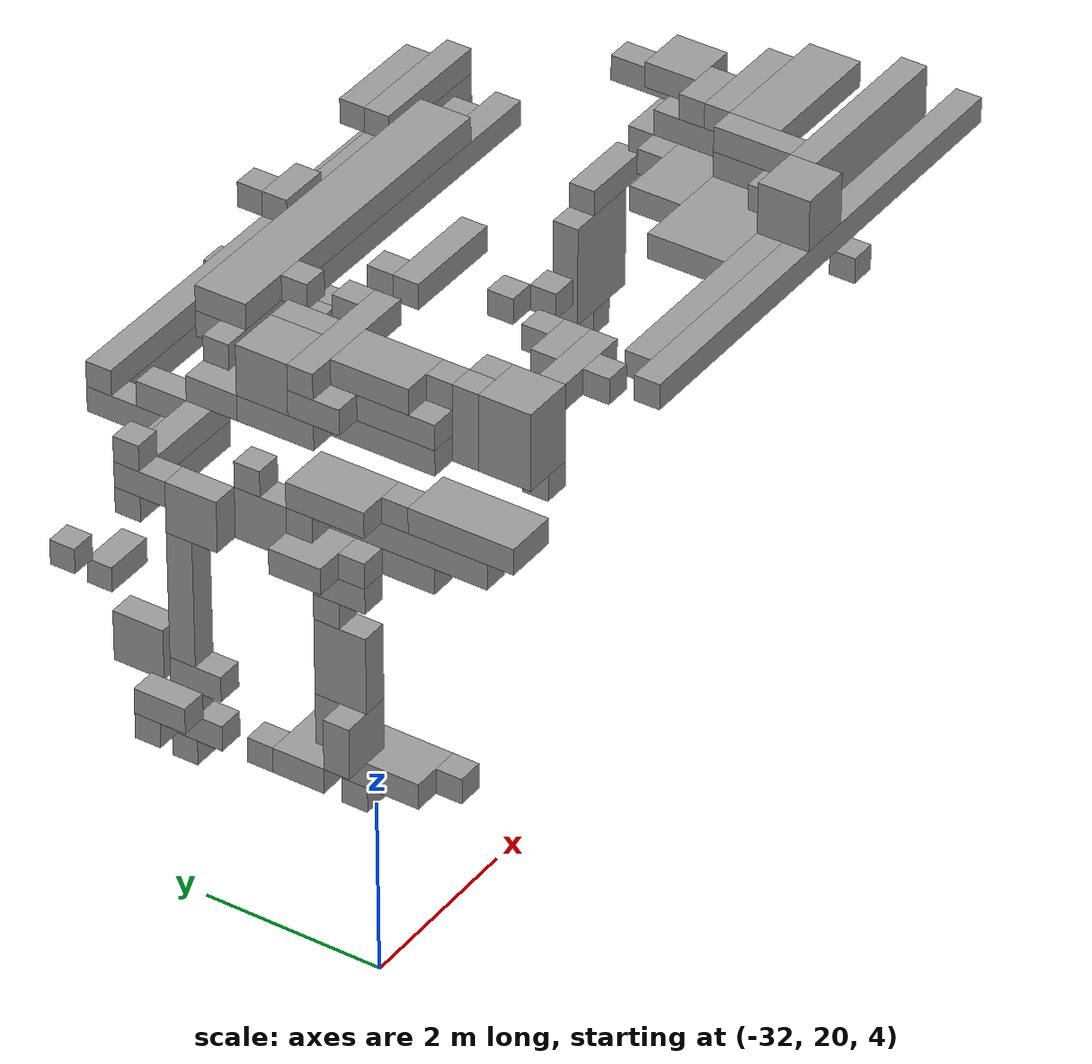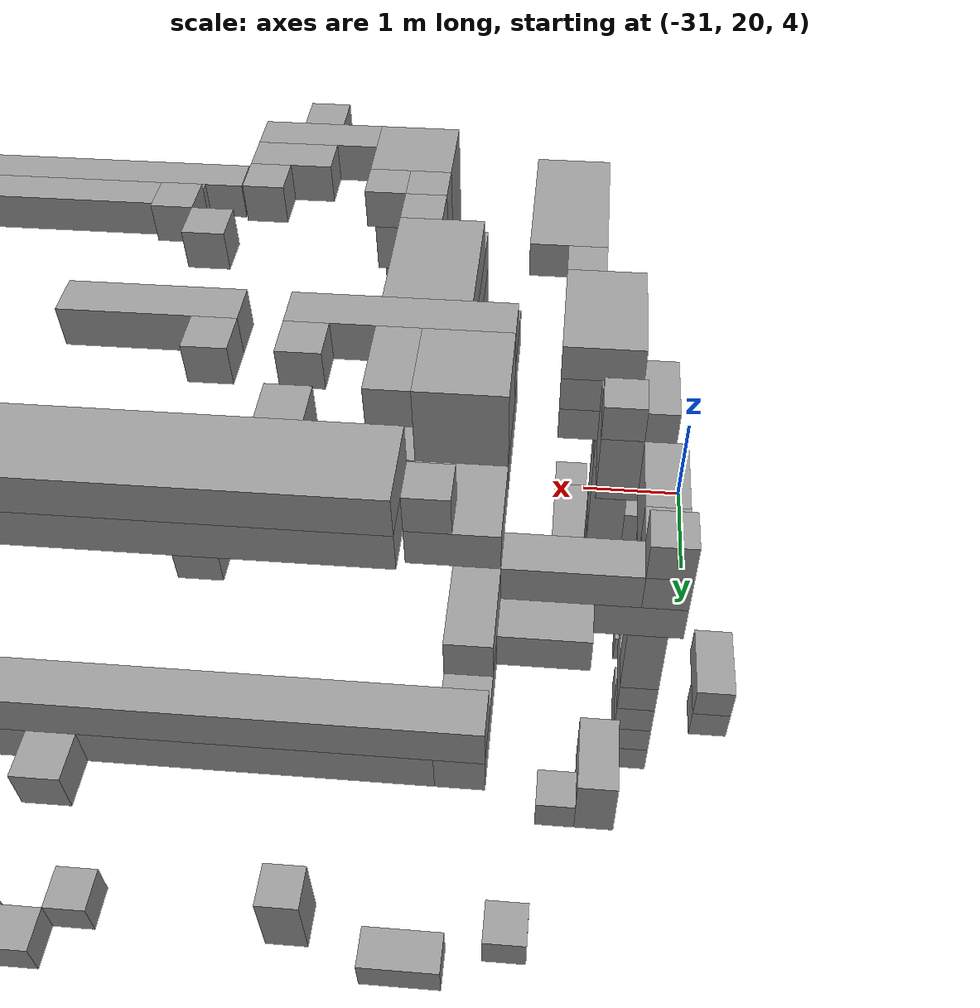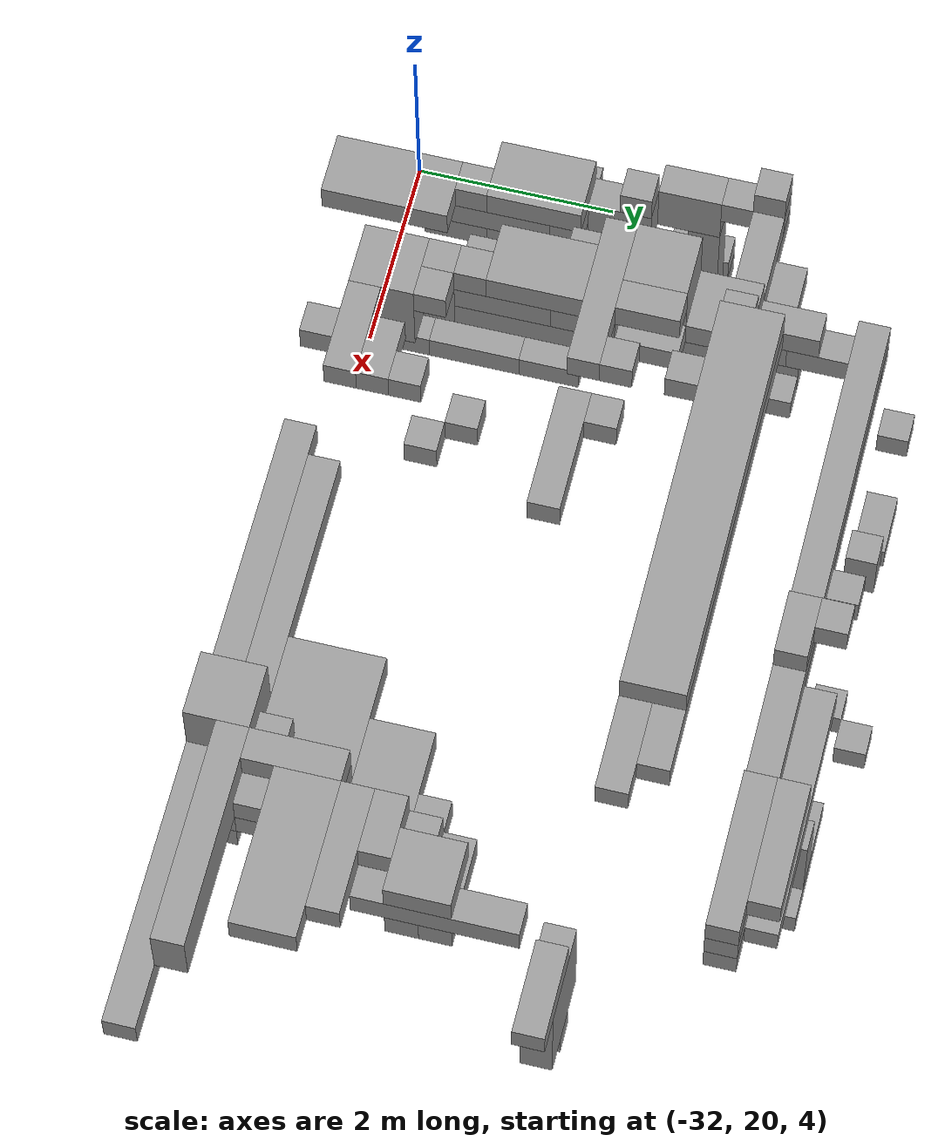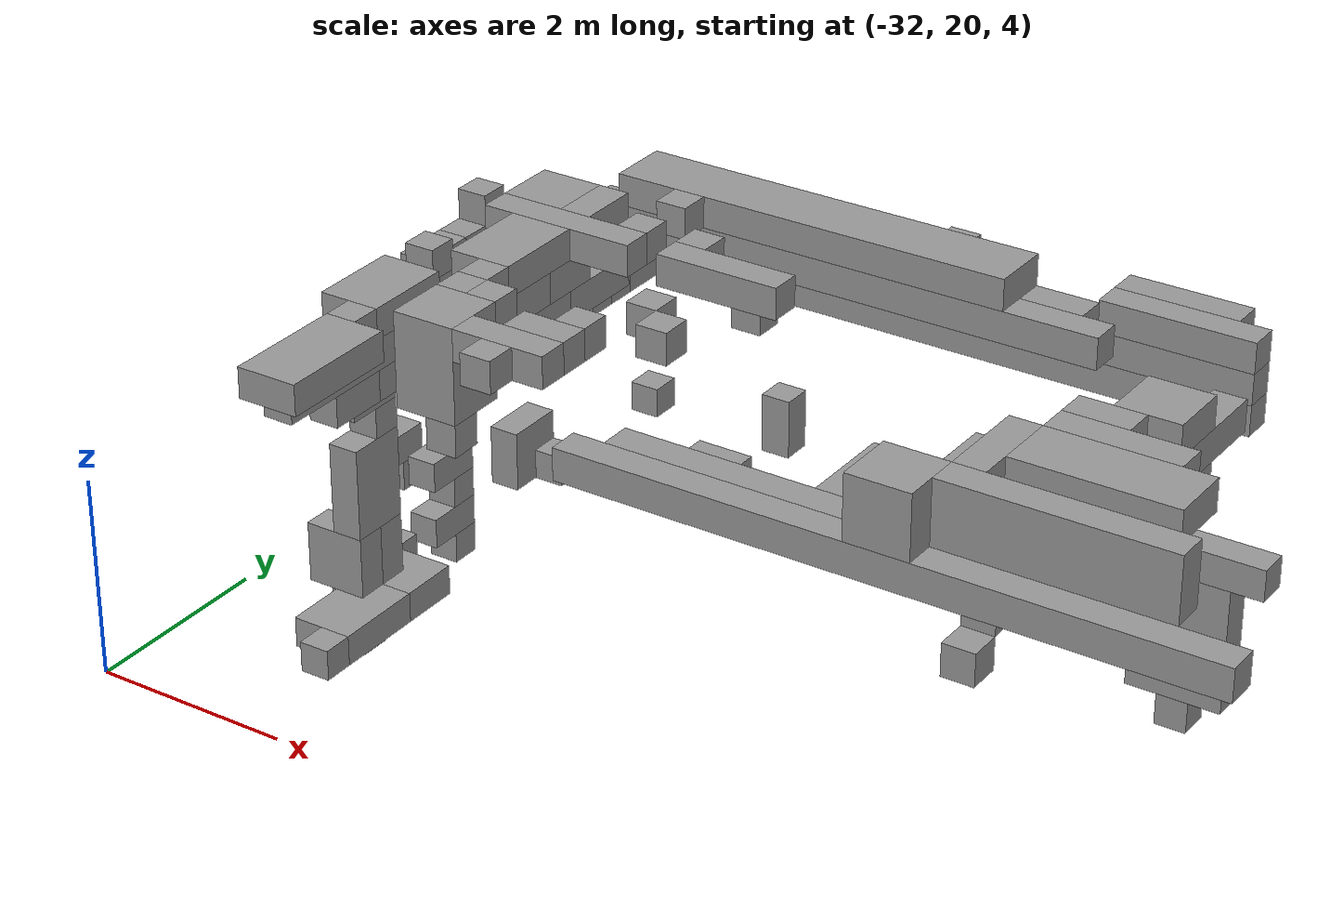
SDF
<sdf version="1.6">
 <world name="bt_world">
  <include><uri>model://sun</uri></include>
  <model name="obstacle_0">
   <static>true</static>
   <pose>-31.049999999999997 23.099999999999998 5.25 0 0 0</pose>
   <link name="link">
    <collision name="collision"><geometry><box><size>0.3 0.6 0.3</size></box></geometry></collision>
    <visual name="visual">
     <geometry><box><size>0.3 0.6 0.3</size></box></geometry>
     <material><ambient>0.5 0.5 0.5 1</ambient><diffuse>0.6 0.6 0.6 1</diffuse></material>
    </visual>
   </link>
  </model>
  <model name="obstacle_1">
   <static>true</static>
   <pose>-31.049999999999997 23.25 4.95 0 0 0</pose>
   <link name="link">
    <collision name="collision"><geometry><box><size>0.3 0.3 0.3</size></box></geometry></collision>
    <visual name="visual">
     <geometry><box><size>0.3 0.3 0.3</size></box></geometry>
     <material><ambient>0.5 0.5 0.5 1</ambient><diffuse>0.6 0.6 0.6 1</diffuse></material>
    </visual>
   </link>
  </model>
  <model name="obstacle_2">
   <static>true</static>
   <pose>-30.299999999999997 21.45 5.1 0 0 0</pose>
   <link name="link">
    <collision name="collision"><geometry><box><size>0.6 0.3 0.6</size></box></geometry></collision>
    <visual name="visual">
     <geometry><box><size>0.6 0.3 0.6</size></box></geometry>
     <material><ambient>0.5 0.5 0.5 1</ambient><diffuse>0.6 0.6 0.6 1</diffuse></material>
    </visual>
   </link>
  </model>
  <model name="obstacle_3">
   <static>true</static>
   <pose>-30.15 21.9 4.6499999999999995 0 0 0</pose>
   <link name="link">
    <collision name="collision">
     <geometry><box><size>0.8999999999999999 0.6 0.3</size></box></geometry>
    </collision>
    <visual name="visual">
     <geometry><box><size>0.8999999999999999 0.6 0.3</size></box></geometry>
     <material><ambient>0.5 0.5 0.5 1</ambient><diffuse>0.6 0.6 0.6 1</diffuse></material>
    </visual>
   </link>
  </model>
  <model name="obstacle_4">
   <static>true</static>
   <pose>-30.15 21.9 7.05 0 0 0</pose>
   <link name="link">
    <collision name="collision">
     <geometry><box><size>0.8999999999999999 0.6 0.3</size></box></geometry>
    </collision>
    <visual name="visual">
     <geometry><box><size>0.8999999999999999 0.6 0.3</size></box></geometry>
     <material><ambient>0.5 0.5 0.5 1</ambient><diffuse>0.6 0.6 0.6 1</diffuse></material>
    </visual>
   </link>
  </model>
  <model name="obstacle_5">
   <static>true</static>
   <pose>-30.45 22.349999999999998 4.6499999999999995 0 0 0</pose>
   <link name="link">
    <collision name="collision"><geometry><box><size>0.3 0.3 0.3</size></box></geometry></collision>
    <visual name="visual">
     <geometry><box><size>0.3 0.3 0.3</size></box></geometry>
     <material><ambient>0.5 0.5 0.5 1</ambient><diffuse>0.6 0.6 0.6 1</diffuse></material>
    </visual>
   </link>
  </model>
  <model name="obstacle_6">
   <static>true</static>
   <pose>-30.45 23.099999999999998 4.6499999999999995 0 0 0</pose>
   <link name="link">
    <collision name="collision"><geometry><box><size>0.3 0.6 0.3</size></box></geometry></collision>
    <visual name="visual">
     <geometry><box><size>0.3 0.6 0.3</size></box></geometry>
     <material><ambient>0.5 0.5 0.5 1</ambient><diffuse>0.6 0.6 0.6 1</diffuse></material>
    </visual>
   </link>
  </model>
  <model name="obstacle_7">
   <static>true</static>
   <pose>-30.45 23.099999999999998 5.25 0 0 0</pose>
   <link name="link">
    <collision name="collision"><geometry><box><size>0.3 0.6 0.3</size></box></geometry></collision>
    <visual name="visual">
     <geometry><box><size>0.3 0.6 0.3</size></box></geometry>
     <material><ambient>0.5 0.5 0.5 1</ambient><diffuse>0.6 0.6 0.6 1</diffuse></material>
    </visual>
   </link>
  </model>
  <model name="obstacle_8">
   <static>true</static>
   <pose>-30.45 23.099999999999998 7.199999999999999 0 0 0</pose>
   <link name="link">
    <collision name="collision"><geometry><box><size>0.3 0.6 0.6</size></box></geometry></collision>
    <visual name="visual">
     <geometry><box><size>0.3 0.6 0.6</size></box></geometry>
     <material><ambient>0.5 0.5 0.5 1</ambient><diffuse>0.6 0.6 0.6 1</diffuse></material>
    </visual>
   </link>
  </model>
  <model name="obstacle_9">
   <static>true</static>
   <pose>-30.45 23.25 4.35 0 0 0</pose>
   <link name="link">
    <collision name="collision"><geometry><box><size>0.3 0.3 0.3</size></box></geometry></collision>
    <visual name="visual">
     <geometry><box><size>0.3 0.3 0.3</size></box></geometry>
     <material><ambient>0.5 0.5 0.5 1</ambient><diffuse>0.6 0.6 0.6 1</diffuse></material>
    </visual>
   </link>
  </model>
  <model name="obstacle_10">
   <static>true</static>
   <pose>-30.45 23.25 4.95 0 0 0</pose>
   <link name="link">
    <collision name="collision"><geometry><box><size>0.3 0.3 0.3</size></box></geometry></collision>
    <visual name="visual">
     <geometry><box><size>0.3 0.3 0.3</size></box></geometry>
     <material><ambient>0.5 0.5 0.5 1</ambient><diffuse>0.6 0.6 0.6 1</diffuse></material>
    </visual>
   </link>
  </model>
  <model name="obstacle_11">
   <static>true</static>
   <pose>-30.45 23.25 6.1499999999999995 0 0 0</pose>
   <link name="link">
    <collision name="collision"><geometry><box><size>0.3 0.3 1.5</size></box></geometry></collision>
    <visual name="visual">
     <geometry><box><size>0.3 0.3 1.5</size></box></geometry>
     <material><ambient>0.5 0.5 0.5 1</ambient><diffuse>0.6 0.6 0.6 1</diffuse></material>
    </visual>
   </link>
  </model>
  <model name="obstacle_12">
   <static>true</static>
   <pose>-30.45 23.7 7.35 0 0 0</pose>
   <link name="link">
    <collision name="collision"><geometry><box><size>0.3 0.6 0.3</size></box></geometry></collision>
    <visual name="visual">
     <geometry><box><size>0.3 0.6 0.3</size></box></geometry>
     <material><ambient>0.5 0.5 0.5 1</ambient><diffuse>0.6 0.6 0.6 1</diffuse></material>
    </visual>
   </link>
  </model>
  <model name="obstacle_13">
   <static>true</static>
   <pose>-29.849999999999998 23.849999999999998 7.05 0 0 0</pose>
   <link name="link">
    <collision name="collision"><geometry><box><size>1.5 0.3 0.3</size></box></geometry></collision>
    <visual name="visual">
     <geometry><box><size>1.5 0.3 0.3</size></box></geometry>
     <material><ambient>0.5 0.5 0.5 1</ambient><diffuse>0.6 0.6 0.6 1</diffuse></material>
    </visual>
   </link>
  </model>
  <model name="obstacle_14">
   <static>true</static>
   <pose>-30.45 23.849999999999998 7.6499999999999995 0 0 0</pose>
   <link name="link">
    <collision name="collision"><geometry><box><size>0.3 0.3 0.3</size></box></geometry></collision>
    <visual name="visual">
     <geometry><box><size>0.3 0.3 0.3</size></box></geometry>
     <material><ambient>0.5 0.5 0.5 1</ambient><diffuse>0.6 0.6 0.6 1</diffuse></material>
    </visual>
   </link>
  </model>
  <model name="obstacle_15">
   <static>true</static>
   <pose>-30.0 21.15 4.6499999999999995 0 0 0</pose>
   <link name="link">
    <collision name="collision">
     <geometry><box><size>0.6 0.8999999999999999 0.3</size></box></geometry>
    </collision>
    <visual name="visual">
     <geometry><box><size>0.6 0.8999999999999999 0.3</size></box></geometry>
     <material><ambient>0.5 0.5 0.5 1</ambient><diffuse>0.6 0.6 0.6 1</diffuse></material>
    </visual>
   </link>
  </model>
  <model name="obstacle_16">
   <static>true</static>
   <pose>-30.15 21.45 4.35 0 0 0</pose>
   <link name="link">
    <collision name="collision"><geometry><box><size>0.3 0.3 0.3</size></box></geometry></collision>
    <visual name="visual">
     <geometry><box><size>0.3 0.3 0.3</size></box></geometry>
     <material><ambient>0.5 0.5 0.5 1</ambient><diffuse>0.6 0.6 0.6 1</diffuse></material>
    </visual>
   </link>
  </model>
  <model name="obstacle_17">
   <static>true</static>
   <pose>-30.15 21.599999999999998 5.85 0 0 0</pose>
   <link name="link">
    <collision name="collision">
     <geometry><box><size>0.3 0.6 0.8999999999999999</size></box></geometry>
    </collision>
    <visual name="visual">
     <geometry><box><size>0.3 0.6 0.8999999999999999</size></box></geometry>
     <material><ambient>0.5 0.5 0.5 1</ambient><diffuse>0.6 0.6 0.6 1</diffuse></material>
    </visual>
   </link>
  </model>
  <model name="obstacle_18">
   <static>true</static>
   <pose>-30.15 21.599999999999998 6.75 0 0 0</pose>
   <link name="link">
    <collision name="collision"><geometry><box><size>0.3 0.6 0.3</size></box></geometry></collision>
    <visual name="visual">
     <geometry><box><size>0.3 0.6 0.3</size></box></geometry>
     <material><ambient>0.5 0.5 0.5 1</ambient><diffuse>0.6 0.6 0.6 1</diffuse></material>
    </visual>
   </link>
  </model>
  <model name="obstacle_19">
   <static>true</static>
   <pose>-30.0 21.45 7.05 0 0 0</pose>
   <link name="link">
    <collision name="collision"><geometry><box><size>0.6 0.3 0.3</size></box></geometry></collision>
    <visual name="visual">
     <geometry><box><size>0.6 0.3 0.3</size></box></geometry>
     <material><ambient>0.5 0.5 0.5 1</ambient><diffuse>0.6 0.6 0.6 1</diffuse></material>
    </visual>
   </link>
  </model>
  <model name="obstacle_20">
   <static>true</static>
   <pose>-30.0 21.75 7.6499999999999995 0 0 0</pose>
   <link name="link">
    <collision name="collision">
     <geometry><box><size>0.6 0.8999999999999999 0.3</size></box></geometry>
    </collision>
    <visual name="visual">
     <geometry><box><size>0.6 0.8999999999999999 0.3</size></box></geometry>
     <material><ambient>0.5 0.5 0.5 1</ambient><diffuse>0.6 0.6 0.6 1</diffuse></material>
    </visual>
   </link>
  </model>
  <model name="obstacle_21">
   <static>true</static>
   <pose>-30.15 21.75 5.1 0 0 0</pose>
   <link name="link">
    <collision name="collision"><geometry><box><size>0.3 0.3 0.6</size></box></geometry></collision>
    <visual name="visual">
     <geometry><box><size>0.3 0.3 0.6</size></box></geometry>
     <material><ambient>0.5 0.5 0.5 1</ambient><diffuse>0.6 0.6 0.6 1</diffuse></material>
    </visual>
   </link>
  </model>
  <model name="obstacle_22">
   <static>true</static>
   <pose>-30.15 21.75 6.45 0 0 0</pose>
   <link name="link">
    <collision name="collision"><geometry><box><size>0.3 0.3 0.3</size></box></geometry></collision>
    <visual name="visual">
     <geometry><box><size>0.3 0.3 0.3</size></box></geometry>
     <material><ambient>0.5 0.5 0.5 1</ambient><diffuse>0.6 0.6 0.6 1</diffuse></material>
    </visual>
   </link>
  </model>
  <model name="obstacle_23">
   <static>true</static>
   <pose>-30.0 22.05 7.35 0 0 0</pose>
   <link name="link">
    <collision name="collision"><geometry><box><size>0.6 0.3 0.3</size></box></geometry></collision>
    <visual name="visual">
     <geometry><box><size>0.6 0.3 0.3</size></box></geometry>
     <material><ambient>0.5 0.5 0.5 1</ambient><diffuse>0.6 0.6 0.6 1</diffuse></material>
    </visual>
   </link>
  </model>
  <model name="obstacle_24">
   <static>true</static>
   <pose>-30.15 22.5 7.199999999999999 0 0 0</pose>
   <link name="link">
    <collision name="collision"><geometry><box><size>0.3 0.6 0.6</size></box></geometry></collision>
    <visual name="visual">
     <geometry><box><size>0.3 0.6 0.6</size></box></geometry>
     <material><ambient>0.5 0.5 0.5 1</ambient><diffuse>0.6 0.6 0.6 1</diffuse></material>
    </visual>
   </link>
  </model>
  <model name="obstacle_25">
   <static>true</static>
   <pose>-30.15 22.65 7.6499999999999995 0 0 0</pose>
   <link name="link">
    <collision name="collision"><geometry><box><size>0.3 0.3 0.3</size></box></geometry></collision>
    <visual name="visual">
     <geometry><box><size>0.3 0.3 0.3</size></box></geometry>
     <material><ambient>0.5 0.5 0.5 1</ambient><diffuse>0.6 0.6 0.6 1</diffuse></material>
    </visual>
   </link>
  </model>
  <model name="obstacle_26">
   <static>true</static>
   <pose>-30.15 24.0 5.1 0 0 0</pose>
   <link name="link">
    <collision name="collision"><geometry><box><size>0.3 0.6 0.6</size></box></geometry></collision>
    <visual name="visual">
     <geometry><box><size>0.3 0.6 0.6</size></box></geometry>
     <material><ambient>0.5 0.5 0.5 1</ambient><diffuse>0.6 0.6 0.6 1</diffuse></material>
    </visual>
   </link>
  </model>
  <model name="obstacle_27">
   <static>true</static>
   <pose>-29.7 23.849999999999998 7.35 0 0 0</pose>
   <link name="link">
    <collision name="collision"><geometry><box><size>1.2 0.3 0.3</size></box></geometry></collision>
    <visual name="visual">
     <geometry><box><size>1.2 0.3 0.3</size></box></geometry>
     <material><ambient>0.5 0.5 0.5 1</ambient><diffuse>0.6 0.6 0.6 1</diffuse></material>
    </visual>
   </link>
  </model>
  <model name="obstacle_36">
   <static>true</static>
   <pose>-29.7 20.4 7.6499999999999995 0 0 0</pose>
   <link name="link">
    <collision name="collision"><geometry><box><size>0.6 1.2 0.3</size></box></geometry></collision>
    <visual name="visual">
     <geometry><box><size>0.6 1.2 0.3</size></box></geometry>
     <material><ambient>0.5 0.5 0.5 1</ambient><diffuse>0.6 0.6 0.6 1</diffuse></material>
    </visual>
   </link>
  </model>
  <model name="obstacle_38">
   <static>true</static>
   <pose>-29.849999999999998 21.0 7.35 0 0 0</pose>
   <link name="link">
    <collision name="collision">
     <geometry><box><size>0.3 1.7999999999999998 0.3</size></box></geometry>
    </collision>
    <visual name="visual">
     <geometry><box><size>0.3 1.7999999999999998 0.3</size></box></geometry>
     <material><ambient>0.5 0.5 0.5 1</ambient><diffuse>0.6 0.6 0.6 1</diffuse></material>
    </visual>
   </link>
  </model>
  <model name="obstacle_39">
   <static>true</static>
   <pose>-29.849999999999998 20.55 4.6499999999999995 0 0 0</pose>
   <link name="link">
    <collision name="collision"><geometry><box><size>0.3 0.3 0.3</size></box></geometry></collision>
    <visual name="visual">
     <geometry><box><size>0.3 0.3 0.3</size></box></geometry>
     <material><ambient>0.5 0.5 0.5 1</ambient><diffuse>0.6 0.6 0.6 1</diffuse></material>
    </visual>
   </link>
  </model>
  <model name="obstacle_40">
   <static>true</static>
   <pose>-29.849999999999998 21.0 7.05 0 0 0</pose>
   <link name="link">
    <collision name="collision"><geometry><box><size>0.3 0.6 0.3</size></box></geometry></collision>
    <visual name="visual">
     <geometry><box><size>0.3 0.6 0.3</size></box></geometry>
     <material><ambient>0.5 0.5 0.5 1</ambient><diffuse>0.6 0.6 0.6 1</diffuse></material>
    </visual>
   </link>
  </model>
  <model name="obstacle_41">
   <static>true</static>
   <pose>-29.849999999999998 21.15 7.6499999999999995 0 0 0</pose>
   <link name="link">
    <collision name="collision"><geometry><box><size>0.3 0.3 0.3</size></box></geometry></collision>
    <visual name="visual">
     <geometry><box><size>0.3 0.3 0.3</size></box></geometry>
     <material><ambient>0.5 0.5 0.5 1</ambient><diffuse>0.6 0.6 0.6 1</diffuse></material>
    </visual>
   </link>
  </model>
  <model name="obstacle_42">
   <static>true</static>
   <pose>-29.849999999999998 24.15 4.95 0 0 0</pose>
   <link name="link">
    <collision name="collision"><geometry><box><size>0.3 0.3 0.3</size></box></geometry></collision>
    <visual name="visual">
     <geometry><box><size>0.3 0.3 0.3</size></box></geometry>
     <material><ambient>0.5 0.5 0.5 1</ambient><diffuse>0.6 0.6 0.6 1</diffuse></material>
    </visual>
   </link>
  </model>
  <model name="obstacle_43">
   <static>true</static>
   <pose>-29.549999999999997 24.15 7.05 0 0 0</pose>
   <link name="link">
    <collision name="collision">
     <geometry><box><size>0.8999999999999999 0.3 0.3</size></box></geometry>
    </collision>
    <visual name="visual">
     <geometry><box><size>0.8999999999999999 0.3 0.3</size></box></geometry>
     <material><ambient>0.5 0.5 0.5 1</ambient><diffuse>0.6 0.6 0.6 1</diffuse></material>
    </visual>
   </link>
  </model>
  <model name="obstacle_52">
   <static>true</static>
   <pose>-29.549999999999997 25.349999999999998 5.25 0 0 0</pose>
   <link name="link">
    <collision name="collision"><geometry><box><size>0.3 0.3 0.3</size></box></geometry></collision>
    <visual name="visual">
     <geometry><box><size>0.3 0.3 0.3</size></box></geometry>
     <material><ambient>0.5 0.5 0.5 1</ambient><diffuse>0.6 0.6 0.6 1</diffuse></material>
    </visual>
   </link>
  </model>
  <model name="obstacle_67">
   <static>true</static>
   <pose>-28.95 22.5 7.949999999999999 0 0 0</pose>
   <link name="link">
    <collision name="collision">
     <geometry><box><size>0.8999999999999999 0.6 0.3</size></box></geometry>
    </collision>
    <visual name="visual">
     <geometry><box><size>0.8999999999999999 0.6 0.3</size></box></geometry>
     <material><ambient>0.5 0.5 0.5 1</ambient><diffuse>0.6 0.6 0.6 1</diffuse></material>
    </visual>
   </link>
  </model>
  <model name="obstacle_68">
   <static>true</static>
   <pose>-28.95 22.95 7.6499999999999995 0 0 0</pose>
   <link name="link">
    <collision name="collision">
     <geometry><box><size>0.8999999999999999 0.8999999999999999 0.3</size></box></geometry>
    </collision>
    <visual name="visual">
     <geometry><box><size>0.8999999999999999 0.8999999999999999 0.3</size></box></geometry>
     <material><ambient>0.5 0.5 0.5 1</ambient><diffuse>0.6 0.6 0.6 1</diffuse></material>
    </visual>
   </link>
  </model>
  <model name="obstacle_69">
   <static>true</static>
   <pose>-28.65 22.65 8.25 0 0 0</pose>
   <link name="link">
    <collision name="collision"><geometry><box><size>1.5 0.3 0.3</size></box></geometry></collision>
    <visual name="visual">
     <geometry><box><size>1.5 0.3 0.3</size></box></geometry>
     <material><ambient>0.5 0.5 0.5 1</ambient><diffuse>0.6 0.6 0.6 1</diffuse></material>
    </visual>
   </link>
  </model>
  <model name="obstacle_70">
   <static>true</static>
   <pose>-29.099999999999998 23.099999999999998 8.1 0 0 0</pose>
   <link name="link">
    <collision name="collision"><geometry><box><size>0.6 0.6 0.6</size></box></geometry></collision>
    <visual name="visual">
     <geometry><box><size>0.6 0.6 0.6</size></box></geometry>
     <material><ambient>0.5 0.5 0.5 1</ambient><diffuse>0.6 0.6 0.6 1</diffuse></material>
    </visual>
   </link>
  </model>
  <model name="obstacle_71">
   <static>true</static>
   <pose>-29.099999999999998 23.7 7.6499999999999995 0 0 0</pose>
   <link name="link">
    <collision name="collision"><geometry><box><size>0.6 0.6 0.3</size></box></geometry></collision>
    <visual name="visual">
     <geometry><box><size>0.6 0.6 0.3</size></box></geometry>
     <material><ambient>0.5 0.5 0.5 1</ambient><diffuse>0.6 0.6 0.6 1</diffuse></material>
    </visual>
   </link>
  </model>
  <model name="obstacle_72">
   <static>true</static>
   <pose>-29.25 24.3 7.35 0 0 0</pose>
   <link name="link">
    <collision name="collision"><geometry><box><size>0.3 0.6 0.3</size></box></geometry></collision>
    <visual name="visual">
     <geometry><box><size>0.3 0.6 0.3</size></box></geometry>
     <material><ambient>0.5 0.5 0.5 1</ambient><diffuse>0.6 0.6 0.6 1</diffuse></material>
    </visual>
   </link>
  </model>
  <model name="obstacle_73">
   <static>true</static>
   <pose>-29.25 24.75 7.05 0 0 0</pose>
   <link name="link">
    <collision name="collision">
     <geometry><box><size>0.3 0.8999999999999999 0.3</size></box></geometry>
    </collision>
    <visual name="visual">
     <geometry><box><size>0.3 0.8999999999999999 0.3</size></box></geometry>
     <material><ambient>0.5 0.5 0.5 1</ambient><diffuse>0.6 0.6 0.6 1</diffuse></material>
    </visual>
   </link>
  </model>
  <model name="obstacle_74">
   <static>true</static>
   <pose>-26.25 25.05 7.35 0 0 0</pose>
   <link name="link">
    <collision name="collision"><geometry><box><size>6.3 0.3 0.3</size></box></geometry></collision>
    <visual name="visual">
     <geometry><box><size>6.3 0.3 0.3</size></box></geometry>
     <material><ambient>0.5 0.5 0.5 1</ambient><diffuse>0.6 0.6 0.6 1</diffuse></material>
    </visual>
   </link>
  </model>
  <model name="obstacle_81">
   <static>true</static>
   <pose>-28.799999999999997 21.9 7.6499999999999995 0 0 0</pose>
   <link name="link">
    <collision name="collision"><geometry><box><size>0.6 1.2 0.3</size></box></geometry></collision>
    <visual name="visual">
     <geometry><box><size>0.6 1.2 0.3</size></box></geometry>
     <material><ambient>0.5 0.5 0.5 1</ambient><diffuse>0.6 0.6 0.6 1</diffuse></material>
    </visual>
   </link>
  </model>
  <model name="obstacle_82">
   <static>true</static>
   <pose>-28.799999999999997 21.75 7.949999999999999 0 0 0</pose>
   <link name="link">
    <collision name="collision">
     <geometry><box><size>0.6 0.8999999999999999 0.3</size></box></geometry>
    </collision>
    <visual name="visual">
     <geometry><box><size>0.6 0.8999999999999999 0.3</size></box></geometry>
     <material><ambient>0.5 0.5 0.5 1</ambient><diffuse>0.6 0.6 0.6 1</diffuse></material>
    </visual>
   </link>
  </model>
  <model name="obstacle_83">
   <static>true</static>
   <pose>-28.799999999999997 22.05 8.25 0 0 0</pose>
   <link name="link">
    <collision name="collision">
     <geometry><box><size>0.6 0.8999999999999999 0.3</size></box></geometry>
    </collision>
    <visual name="visual">
     <geometry><box><size>0.6 0.8999999999999999 0.3</size></box></geometry>
     <material><ambient>0.5 0.5 0.5 1</ambient><diffuse>0.6 0.6 0.6 1</diffuse></material>
    </visual>
   </link>
  </model>
  <model name="obstacle_84">
   <static>true</static>
   <pose>-26.55 23.849999999999998 7.949999999999999 0 0 0</pose>
   <link name="link">
    <collision name="collision"><geometry><box><size>5.1 0.3 0.3</size></box></geometry></collision>
    <visual name="visual">
     <geometry><box><size>5.1 0.3 0.3</size></box></geometry>
     <material><ambient>0.5 0.5 0.5 1</ambient><diffuse>0.6 0.6 0.6 1</diffuse></material>
    </visual>
   </link>
  </model>
  <model name="obstacle_86">
   <static>true</static>
   <pose>-26.099999999999998 25.05 7.05 0 0 0</pose>
   <link name="link">
    <collision name="collision"><geometry><box><size>6.0 0.3 0.3</size></box></geometry></collision>
    <visual name="visual">
     <geometry><box><size>6.0 0.3 0.3</size></box></geometry>
     <material><ambient>0.5 0.5 0.5 1</ambient><diffuse>0.6 0.6 0.6 1</diffuse></material>
    </visual>
   </link>
  </model>
  <model name="obstacle_87">
   <static>true</static>
   <pose>-28.799999999999997 25.349999999999998 4.6499999999999995 0 0 0</pose>
   <link name="link">
    <collision name="collision"><geometry><box><size>0.6 0.3 0.3</size></box></geometry></collision>
    <visual name="visual">
     <geometry><box><size>0.6 0.3 0.3</size></box></geometry>
     <material><ambient>0.5 0.5 0.5 1</ambient><diffuse>0.6 0.6 0.6 1</diffuse></material>
    </visual>
   </link>
  </model>
  <model name="obstacle_105">
   <static>true</static>
   <pose>-28.5 20.7 7.949999999999999 0 0 0</pose>
   <link name="link">
    <collision name="collision">
     <geometry><box><size>0.6 0.6 0.8999999999999999</size></box></geometry>
    </collision>
    <visual name="visual">
     <geometry><box><size>0.6 0.6 0.8999999999999999</size></box></geometry>
     <material><ambient>0.5 0.5 0.5 1</ambient><diffuse>0.6 0.6 0.6 1</diffuse></material>
    </visual>
   </link>
  </model>
  <model name="obstacle_106">
   <static>true</static>
   <pose>-28.65 21.15 7.949999999999999 0 0 0</pose>
   <link name="link">
    <collision name="collision">
     <geometry><box><size>0.3 0.3 0.8999999999999999</size></box></geometry>
    </collision>
    <visual name="visual">
     <geometry><box><size>0.3 0.3 0.8999999999999999</size></box></geometry>
     <material><ambient>0.5 0.5 0.5 1</ambient><diffuse>0.6 0.6 0.6 1</diffuse></material>
    </visual>
   </link>
  </model>
  <model name="obstacle_107">
   <static>true</static>
   <pose>-28.65 21.45 8.25 0 0 0</pose>
   <link name="link">
    <collision name="collision"><geometry><box><size>0.3 0.3 0.3</size></box></geometry></collision>
    <visual name="visual">
     <geometry><box><size>0.3 0.3 0.3</size></box></geometry>
     <material><ambient>0.5 0.5 0.5 1</ambient><diffuse>0.6 0.6 0.6 1</diffuse></material>
    </visual>
   </link>
  </model>
  <model name="obstacle_108">
   <static>true</static>
   <pose>-28.65 23.099999999999998 8.25 0 0 0</pose>
   <link name="link">
    <collision name="collision"><geometry><box><size>0.3 0.6 0.3</size></box></geometry></collision>
    <visual name="visual">
     <geometry><box><size>0.3 0.6 0.3</size></box></geometry>
     <material><ambient>0.5 0.5 0.5 1</ambient><diffuse>0.6 0.6 0.6 1</diffuse></material>
    </visual>
   </link>
  </model>
  <model name="obstacle_110">
   <static>true</static>
   <pose>-26.849999999999998 24.0 8.25 0 0 0</pose>
   <link name="link">
    <collision name="collision"><geometry><box><size>3.9 0.6 0.3</size></box></geometry></collision>
    <visual name="visual">
     <geometry><box><size>3.9 0.6 0.3</size></box></geometry>
     <material><ambient>0.5 0.5 0.5 1</ambient><diffuse>0.6 0.6 0.6 1</diffuse></material>
    </visual>
   </link>
  </model>
  <model name="obstacle_111">
   <static>true</static>
   <pose>-26.55 24.15 7.949999999999999 0 0 0</pose>
   <link name="link">
    <collision name="collision"><geometry><box><size>4.5 0.3 0.3</size></box></geometry></collision>
    <visual name="visual">
     <geometry><box><size>4.5 0.3 0.3</size></box></geometry>
     <material><ambient>0.5 0.5 0.5 1</ambient><diffuse>0.6 0.6 0.6 1</diffuse></material>
    </visual>
   </link>
  </model>
  <model name="obstacle_128">
   <static>true</static>
   <pose>-28.349999999999998 20.55 7.35 0 0 0</pose>
   <link name="link">
    <collision name="collision"><geometry><box><size>0.3 0.3 0.3</size></box></geometry></collision>
    <visual name="visual">
     <geometry><box><size>0.3 0.3 0.3</size></box></geometry>
     <material><ambient>0.5 0.5 0.5 1</ambient><diffuse>0.6 0.6 0.6 1</diffuse></material>
    </visual>
   </link>
  </model>
  <model name="obstacle_129">
   <static>true</static>
   <pose>-28.349999999999998 21.15 8.25 0 0 0</pose>
   <link name="link">
    <collision name="collision"><geometry><box><size>0.3 0.3 0.3</size></box></geometry></collision>
    <visual name="visual">
     <geometry><box><size>0.3 0.3 0.3</size></box></geometry>
     <material><ambient>0.5 0.5 0.5 1</ambient><diffuse>0.6 0.6 0.6 1</diffuse></material>
    </visual>
   </link>
  </model>
  <model name="obstacle_148">
   <static>true</static>
   <pose>-27.75 20.55 8.25 0 0 0</pose>
   <link name="link">
    <collision name="collision">
     <geometry><box><size>0.8999999999999999 0.3 0.3</size></box></geometry>
    </collision>
    <visual name="visual">
     <geometry><box><size>0.8999999999999999 0.3 0.3</size></box></geometry>
     <material><ambient>0.5 0.5 0.5 1</ambient><diffuse>0.6 0.6 0.6 1</diffuse></material>
    </visual>
   </link>
  </model>
  <model name="obstacle_149">
   <static>true</static>
   <pose>-28.05 22.95 8.25 0 0 0</pose>
   <link name="link">
    <collision name="collision"><geometry><box><size>0.3 0.3 0.3</size></box></geometry></collision>
    <visual name="visual">
     <geometry><box><size>0.3 0.3 0.3</size></box></geometry>
     <material><ambient>0.5 0.5 0.5 1</ambient><diffuse>0.6 0.6 0.6 1</diffuse></material>
    </visual>
   </link>
  </model>
  <model name="obstacle_150">
   <static>true</static>
   <pose>-28.05 23.55 8.25 0 0 0</pose>
   <link name="link">
    <collision name="collision"><geometry><box><size>0.3 0.3 0.3</size></box></geometry></collision>
    <visual name="visual">
     <geometry><box><size>0.3 0.3 0.3</size></box></geometry>
     <material><ambient>0.5 0.5 0.5 1</ambient><diffuse>0.6 0.6 0.6 1</diffuse></material>
    </visual>
   </link>
  </model>
  <model name="obstacle_151">
   <static>true</static>
   <pose>-28.05 25.349999999999998 5.3999999999999995 0 0 0</pose>
   <link name="link">
    <collision name="collision"><geometry><box><size>0.3 0.3 0.6</size></box></geometry></collision>
    <visual name="visual">
     <geometry><box><size>0.3 0.3 0.6</size></box></geometry>
     <material><ambient>0.5 0.5 0.5 1</ambient><diffuse>0.6 0.6 0.6 1</diffuse></material>
    </visual>
   </link>
  </model>
  <model name="obstacle_157">
   <static>true</static>
   <pose>-27.75 20.25 8.25 0 0 0</pose>
   <link name="link">
    <collision name="collision"><geometry><box><size>0.3 0.3 0.3</size></box></geometry></collision>
    <visual name="visual">
     <geometry><box><size>0.3 0.3 0.3</size></box></geometry>
     <material><ambient>0.5 0.5 0.5 1</ambient><diffuse>0.6 0.6 0.6 1</diffuse></material>
    </visual>
   </link>
  </model>
  <model name="obstacle_158">
   <static>true</static>
   <pose>-27.599999999999998 20.849999999999998 8.25 0 0 0</pose>
   <link name="link">
    <collision name="collision"><geometry><box><size>0.6 0.3 0.3</size></box></geometry></collision>
    <visual name="visual">
     <geometry><box><size>0.6 0.3 0.3</size></box></geometry>
     <material><ambient>0.5 0.5 0.5 1</ambient><diffuse>0.6 0.6 0.6 1</diffuse></material>
    </visual>
   </link>
  </model>
  <model name="obstacle_170">
   <static>true</static>
   <pose>-27.45 21.15 8.25 0 0 0</pose>
   <link name="link">
    <collision name="collision"><geometry><box><size>0.3 0.3 0.3</size></box></geometry></collision>
    <visual name="visual">
     <geometry><box><size>0.3 0.3 0.3</size></box></geometry>
     <material><ambient>0.5 0.5 0.5 1</ambient><diffuse>0.6 0.6 0.6 1</diffuse></material>
    </visual>
   </link>
  </model>
  <model name="obstacle_171">
   <static>true</static>
   <pose>-27.0 22.65 8.25 0 0 0</pose>
   <link name="link">
    <collision name="collision"><geometry><box><size>1.2 0.3 0.3</size></box></geometry></collision>
    <visual name="visual">
     <geometry><box><size>1.2 0.3 0.3</size></box></geometry>
     <material><ambient>0.5 0.5 0.5 1</ambient><diffuse>0.6 0.6 0.6 1</diffuse></material>
    </visual>
   </link>
  </model>
  <model name="obstacle_172">
   <static>true</static>
   <pose>-27.45 22.95 8.25 0 0 0</pose>
   <link name="link">
    <collision name="collision"><geometry><box><size>0.3 0.3 0.3</size></box></geometry></collision>
    <visual name="visual">
     <geometry><box><size>0.3 0.3 0.3</size></box></geometry>
     <material><ambient>0.5 0.5 0.5 1</ambient><diffuse>0.6 0.6 0.6 1</diffuse></material>
    </visual>
   </link>
  </model>
  <model name="obstacle_173">
   <static>true</static>
   <pose>-27.45 23.849999999999998 7.35 0 0 0</pose>
   <link name="link">
    <collision name="collision"><geometry><box><size>0.3 0.3 0.3</size></box></geometry></collision>
    <visual name="visual">
     <geometry><box><size>0.3 0.3 0.3</size></box></geometry>
     <material><ambient>0.5 0.5 0.5 1</ambient><diffuse>0.6 0.6 0.6 1</diffuse></material>
    </visual>
   </link>
  </model>
  <model name="obstacle_184">
   <static>true</static>
   <pose>-27.15 21.75 8.25 0 0 0</pose>
   <link name="link">
    <collision name="collision"><geometry><box><size>0.3 0.3 0.3</size></box></geometry></collision>
    <visual name="visual">
     <geometry><box><size>0.3 0.3 0.3</size></box></geometry>
     <material><ambient>0.5 0.5 0.5 1</ambient><diffuse>0.6 0.6 0.6 1</diffuse></material>
    </visual>
   </link>
  </model>
  <model name="obstacle_188">
   <static>true</static>
   <pose>-24.0 20.25 7.6499999999999995 0 0 0</pose>
   <link name="link">
    <collision name="collision"><geometry><box><size>6.0 0.3 0.3</size></box></geometry></collision>
    <visual name="visual">
     <geometry><box><size>6.0 0.3 0.3</size></box></geometry>
     <material><ambient>0.5 0.5 0.5 1</ambient><diffuse>0.6 0.6 0.6 1</diffuse></material>
    </visual>
   </link>
  </model>
  <model name="obstacle_189">
   <static>true</static>
   <pose>-26.849999999999998 21.45 8.25 0 0 0</pose>
   <link name="link">
    <collision name="collision"><geometry><box><size>0.3 0.3 0.3</size></box></geometry></collision>
    <visual name="visual">
     <geometry><box><size>0.3 0.3 0.3</size></box></geometry>
     <material><ambient>0.5 0.5 0.5 1</ambient><diffuse>0.6 0.6 0.6 1</diffuse></material>
    </visual>
   </link>
  </model>
  <model name="obstacle_190">
   <static>true</static>
   <pose>-26.849999999999998 25.349999999999998 7.05 0 0 0</pose>
   <link name="link">
    <collision name="collision"><geometry><box><size>0.3 0.3 0.3</size></box></geometry></collision>
    <visual name="visual">
     <geometry><box><size>0.3 0.3 0.3</size></box></geometry>
     <material><ambient>0.5 0.5 0.5 1</ambient><diffuse>0.6 0.6 0.6 1</diffuse></material>
    </visual>
   </link>
  </model>
  <model name="obstacle_199">
   <static>true</static>
   <pose>-24.9 20.55 7.6499999999999995 0 0 0</pose>
   <link name="link">
    <collision name="collision">
     <geometry><box><size>3.5999999999999996 0.3 0.3</size></box></geometry>
    </collision>
    <visual name="visual">
     <geometry><box><size>3.5999999999999996 0.3 0.3</size></box></geometry>
     <material><ambient>0.5 0.5 0.5 1</ambient><diffuse>0.6 0.6 0.6 1</diffuse></material>
    </visual>
   </link>
  </model>
  <model name="obstacle_200">
   <static>true</static>
   <pose>-26.55 25.349999999999998 5.25 0 0 0</pose>
   <link name="link">
    <collision name="collision"><geometry><box><size>0.3 0.3 0.3</size></box></geometry></collision>
    <visual name="visual">
     <geometry><box><size>0.3 0.3 0.3</size></box></geometry>
     <material><ambient>0.5 0.5 0.5 1</ambient><diffuse>0.6 0.6 0.6 1</diffuse></material>
    </visual>
   </link>
  </model>
  <model name="obstacle_210">
   <static>true</static>
   <pose>-26.099999999999998 25.05 7.6499999999999995 0 0 0</pose>
   <link name="link">
    <collision name="collision"><geometry><box><size>0.6 0.3 0.3</size></box></geometry></collision>
    <visual name="visual">
     <geometry><box><size>0.6 0.3 0.3</size></box></geometry>
     <material><ambient>0.5 0.5 0.5 1</ambient><diffuse>0.6 0.6 0.6 1</diffuse></material>
    </visual>
   </link>
  </model>
  <model name="obstacle_211">
   <static>true</static>
   <pose>-26.25 25.349999999999998 7.6499999999999995 0 0 0</pose>
   <link name="link">
    <collision name="collision"><geometry><box><size>0.3 0.3 0.3</size></box></geometry></collision>
    <visual name="visual">
     <geometry><box><size>0.3 0.3 0.3</size></box></geometry>
     <material><ambient>0.5 0.5 0.5 1</ambient><diffuse>0.6 0.6 0.6 1</diffuse></material>
    </visual>
   </link>
  </model>
  <model name="obstacle_212">
   <static>true</static>
   <pose>-26.25 25.65 5.25 0 0 0</pose>
   <link name="link">
    <collision name="collision"><geometry><box><size>0.3 0.3 0.3</size></box></geometry></collision>
    <visual name="visual">
     <geometry><box><size>0.3 0.3 0.3</size></box></geometry>
     <material><ambient>0.5 0.5 0.5 1</ambient><diffuse>0.6 0.6 0.6 1</diffuse></material>
    </visual>
   </link>
  </model>
  <model name="obstacle_235">
   <static>true</static>
   <pose>-25.2 25.349999999999998 4.6499999999999995 0 0 0</pose>
   <link name="link">
    <collision name="collision"><geometry><box><size>1.2 0.3 0.3</size></box></geometry></collision>
    <visual name="visual">
     <geometry><box><size>1.2 0.3 0.3</size></box></geometry>
     <material><ambient>0.5 0.5 0.5 1</ambient><diffuse>0.6 0.6 0.6 1</diffuse></material>
    </visual>
   </link>
  </model>
  <model name="obstacle_236">
   <static>true</static>
   <pose>-24.599999999999998 25.349999999999998 7.05 0 0 0</pose>
   <link name="link">
    <collision name="collision"><geometry><box><size>2.4 0.3 0.3</size></box></geometry></collision>
    <visual name="visual">
     <geometry><box><size>2.4 0.3 0.3</size></box></geometry>
     <material><ambient>0.5 0.5 0.5 1</ambient><diffuse>0.6 0.6 0.6 1</diffuse></material>
    </visual>
   </link>
  </model>
  <model name="obstacle_282">
   <static>true</static>
   <pose>-25.05 25.349999999999998 5.25 0 0 0</pose>
   <link name="link">
    <collision name="collision">
     <geometry><box><size>0.3 0.3 0.8999999999999999</size></box></geometry>
    </collision>
    <visual name="visual">
     <geometry><box><size>0.3 0.3 0.8999999999999999</size></box></geometry>
     <material><ambient>0.5 0.5 0.5 1</ambient><diffuse>0.6 0.6 0.6 1</diffuse></material>
    </visual>
   </link>
  </model>
  <model name="obstacle_303">
   <static>true</static>
   <pose>-24.0 21.15 7.6499999999999995 0 0 0</pose>
   <link name="link">
    <collision name="collision">
     <geometry><box><size>1.7999999999999998 0.8999999999999999 0.3</size></box></geometry>
    </collision>
    <visual name="visual">
     <geometry><box><size>1.7999999999999998 0.8999999999999999 0.3</size></box></geometry>
     <material><ambient>0.5 0.5 0.5 1</ambient><diffuse>0.6 0.6 0.6 1</diffuse></material>
    </visual>
   </link>
  </model>
  <model name="obstacle_368">
   <static>true</static>
   <pose>-23.849999999999998 25.05 7.6499999999999995 0 0 0</pose>
   <link name="link">
    <collision name="collision"><geometry><box><size>1.5 0.3 0.3</size></box></geometry></collision>
    <visual name="visual">
     <geometry><box><size>1.5 0.3 0.3</size></box></geometry>
     <material><ambient>0.5 0.5 0.5 1</ambient><diffuse>0.6 0.6 0.6 1</diffuse></material>
    </visual>
   </link>
  </model>
  <model name="obstacle_369">
   <static>true</static>
   <pose>-24.0 25.349999999999998 7.6499999999999995 0 0 0</pose>
   <link name="link">
    <collision name="collision"><geometry><box><size>1.2 0.3 0.3</size></box></geometry></collision>
    <visual name="visual">
     <geometry><box><size>1.2 0.3 0.3</size></box></geometry>
     <material><ambient>0.5 0.5 0.5 1</ambient><diffuse>0.6 0.6 0.6 1</diffuse></material>
    </visual>
   </link>
  </model>
  <model name="obstacle_399">
   <static>true</static>
   <pose>-24.0 20.4 8.1 0 0 0</pose>
   <link name="link">
    <collision name="collision"><geometry><box><size>0.6 0.6 0.6</size></box></geometry></collision>
    <visual name="visual">
     <geometry><box><size>0.6 0.6 0.6</size></box></geometry>
     <material><ambient>0.5 0.5 0.5 1</ambient><diffuse>0.6 0.6 0.6 1</diffuse></material>
    </visual>
   </link>
  </model>
  <model name="obstacle_400">
   <static>true</static>
   <pose>-23.7 21.9 7.6499999999999995 0 0 0</pose>
   <link name="link">
    <collision name="collision"><geometry><box><size>1.2 0.6 0.3</size></box></geometry></collision>
    <visual name="visual">
     <geometry><box><size>1.2 0.6 0.3</size></box></geometry>
     <material><ambient>0.5 0.5 0.5 1</ambient><diffuse>0.6 0.6 0.6 1</diffuse></material>
    </visual>
   </link>
  </model>
  <model name="obstacle_423">
   <static>true</static>
   <pose>-23.55 20.849999999999998 7.949999999999999 0 0 0</pose>
   <link name="link">
    <collision name="collision">
     <geometry><box><size>0.8999999999999999 0.3 0.3</size></box></geometry>
    </collision>
    <visual name="visual">
     <geometry><box><size>0.8999999999999999 0.3 0.3</size></box></geometry>
     <material><ambient>0.5 0.5 0.5 1</ambient><diffuse>0.6 0.6 0.6 1</diffuse></material>
    </visual>
   </link>
  </model>
  <model name="obstacle_463">
   <static>true</static>
   <pose>-22.65 20.55 8.1 0 0 0</pose>
   <link name="link">
    <collision name="collision"><geometry><box><size>2.1 0.3 0.6</size></box></geometry></collision>
    <visual name="visual">
     <geometry><box><size>2.1 0.3 0.6</size></box></geometry>
     <material><ambient>0.5 0.5 0.5 1</ambient><diffuse>0.6 0.6 0.6 1</diffuse></material>
    </visual>
   </link>
  </model>
  <model name="obstacle_464">
   <static>true</static>
   <pose>-23.55 21.15 8.25 0 0 0</pose>
   <link name="link">
    <collision name="collision">
     <geometry><box><size>0.3 0.8999999999999999 0.3</size></box></geometry>
    </collision>
    <visual name="visual">
     <geometry><box><size>0.3 0.8999999999999999 0.3</size></box></geometry>
     <material><ambient>0.5 0.5 0.5 1</ambient><diffuse>0.6 0.6 0.6 1</diffuse></material>
    </visual>
   </link>
  </model>
  <model name="obstacle_465">
   <static>true</static>
   <pose>-23.4 21.3 7.949999999999999 0 0 0</pose>
   <link name="link">
    <collision name="collision"><geometry><box><size>0.6 0.6 0.3</size></box></geometry></collision>
    <visual name="visual">
     <geometry><box><size>0.6 0.6 0.3</size></box></geometry>
     <material><ambient>0.5 0.5 0.5 1</ambient><diffuse>0.6 0.6 0.6 1</diffuse></material>
    </visual>
   </link>
  </model>
  <model name="obstacle_466">
   <static>true</static>
   <pose>-23.099999999999998 22.349999999999998 7.6499999999999995 0 0 0</pose>
   <link name="link">
    <collision name="collision"><geometry><box><size>1.2 0.3 0.3</size></box></geometry></collision>
    <visual name="visual">
     <geometry><box><size>1.2 0.3 0.3</size></box></geometry>
     <material><ambient>0.5 0.5 0.5 1</ambient><diffuse>0.6 0.6 0.6 1</diffuse></material>
    </visual>
   </link>
  </model>
  <model name="obstacle_496">
   <static>true</static>
   <pose>-23.25 20.25 7.05 0 0 0</pose>
   <link name="link">
    <collision name="collision"><geometry><box><size>0.3 0.3 0.3</size></box></geometry></collision>
    <visual name="visual">
     <geometry><box><size>0.3 0.3 0.3</size></box></geometry>
     <material><ambient>0.5 0.5 0.5 1</ambient><diffuse>0.6 0.6 0.6 1</diffuse></material>
    </visual>
   </link>
  </model>
  <model name="obstacle_498">
   <static>true</static>
   <pose>-23.25 20.55 7.35 0 0 0</pose>
   <link name="link">
    <collision name="collision"><geometry><box><size>0.3 0.3 0.3</size></box></geometry></collision>
    <visual name="visual">
     <geometry><box><size>0.3 0.3 0.3</size></box></geometry>
     <material><ambient>0.5 0.5 0.5 1</ambient><diffuse>0.6 0.6 0.6 1</diffuse></material>
    </visual>
   </link>
  </model>
  <model name="obstacle_499">
   <static>true</static>
   <pose>-22.65 21.3 8.25 0 0 0</pose>
   <link name="link">
    <collision name="collision"><geometry><box><size>1.5 0.6 0.3</size></box></geometry></collision>
    <visual name="visual">
     <geometry><box><size>1.5 0.6 0.3</size></box></geometry>
     <material><ambient>0.5 0.5 0.5 1</ambient><diffuse>0.6 0.6 0.6 1</diffuse></material>
    </visual>
   </link>
  </model>
  <model name="obstacle_500">
   <static>true</static>
   <pose>-23.099999999999998 22.05 7.949999999999999 0 0 0</pose>
   <link name="link">
    <collision name="collision">
     <geometry><box><size>0.6 0.8999999999999999 0.3</size></box></geometry>
    </collision>
    <visual name="visual">
     <geometry><box><size>0.6 0.8999999999999999 0.3</size></box></geometry>
     <material><ambient>0.5 0.5 0.5 1</ambient><diffuse>0.6 0.6 0.6 1</diffuse></material>
    </visual>
   </link>
  </model>
  <model name="obstacle_501">
   <static>true</static>
   <pose>-22.8 21.75 8.25 0 0 0</pose>
   <link name="link">
    <collision name="collision"><geometry><box><size>1.2 0.3 0.3</size></box></geometry></collision>
    <visual name="visual">
     <geometry><box><size>1.2 0.3 0.3</size></box></geometry>
     <material><ambient>0.5 0.5 0.5 1</ambient><diffuse>0.6 0.6 0.6 1</diffuse></material>
    </visual>
   </link>
  </model>
  <model name="obstacle_502">
   <static>true</static>
   <pose>-23.099999999999998 22.05 8.25 0 0 0</pose>
   <link name="link">
    <collision name="collision"><geometry><box><size>0.6 0.3 0.3</size></box></geometry></collision>
    <visual name="visual">
     <geometry><box><size>0.6 0.3 0.3</size></box></geometry>
     <material><ambient>0.5 0.5 0.5 1</ambient><diffuse>0.6 0.6 0.6 1</diffuse></material>
    </visual>
   </link>
  </model>
  <model name="obstacle_503">
   <static>true</static>
   <pose>-22.95 22.65 7.6499999999999995 0 0 0</pose>
   <link name="link">
    <collision name="collision">
     <geometry><box><size>0.8999999999999999 0.3 0.3</size></box></geometry>
    </collision>
    <visual name="visual">
     <geometry><box><size>0.8999999999999999 0.3 0.3</size></box></geometry>
     <material><ambient>0.5 0.5 0.5 1</ambient><diffuse>0.6 0.6 0.6 1</diffuse></material>
    </visual>
   </link>
  </model>
  <model name="obstacle_504">
   <static>true</static>
   <pose>-22.95 23.55 5.7 0 0 0</pose>
   <link name="link">
    <collision name="collision">
     <geometry><box><size>0.8999999999999999 0.3 1.2</size></box></geometry>
    </collision>
    <visual name="visual">
     <geometry><box><size>0.8999999999999999 0.3 1.2</size></box></geometry>
     <material><ambient>0.5 0.5 0.5 1</ambient><diffuse>0.6 0.6 0.6 1</diffuse></material>
    </visual>
   </link>
  </model>
  <model name="obstacle_528">
   <static>true</static>
   <pose>-22.95 22.05 7.6499999999999995 0 0 0</pose>
   <link name="link">
    <collision name="collision"><geometry><box><size>0.3 0.3 0.3</size></box></geometry></collision>
    <visual name="visual">
     <geometry><box><size>0.3 0.3 0.3</size></box></geometry>
     <material><ambient>0.5 0.5 0.5 1</ambient><diffuse>0.6 0.6 0.6 1</diffuse></material>
    </visual>
   </link>
  </model>
  <model name="obstacle_529">
   <static>true</static>
   <pose>-22.8 22.5 8.25 0 0 0</pose>
   <link name="link">
    <collision name="collision"><geometry><box><size>0.6 0.6 0.3</size></box></geometry></collision>
    <visual name="visual">
     <geometry><box><size>0.6 0.6 0.3</size></box></geometry>
     <material><ambient>0.5 0.5 0.5 1</ambient><diffuse>0.6 0.6 0.6 1</diffuse></material>
    </visual>
   </link>
  </model>
  <model name="obstacle_530">
   <static>true</static>
   <pose>-22.95 23.55 4.95 0 0 0</pose>
   <link name="link">
    <collision name="collision"><geometry><box><size>0.3 0.3 0.3</size></box></geometry></collision>
    <visual name="visual">
     <geometry><box><size>0.3 0.3 0.3</size></box></geometry>
     <material><ambient>0.5 0.5 0.5 1</ambient><diffuse>0.6 0.6 0.6 1</diffuse></material>
    </visual>
   </link>
  </model>
  <model name="obstacle_531">
   <static>true</static>
   <pose>-22.65 23.55 6.45 0 0 0</pose>
   <link name="link">
    <collision name="collision">
     <geometry><box><size>0.8999999999999999 0.3 0.3</size></box></geometry>
    </collision>
    <visual name="visual">
     <geometry><box><size>0.8999999999999999 0.3 0.3</size></box></geometry>
     <material><ambient>0.5 0.5 0.5 1</ambient><diffuse>0.6 0.6 0.6 1</diffuse></material>
    </visual>
   </link>
  </model>
  <model name="obstacle_562">
   <static>true</static>
   <pose>-22.65 22.65 7.949999999999999 0 0 0</pose>
   <link name="link">
    <collision name="collision"><geometry><box><size>0.3 1.5 0.3</size></box></geometry></collision>
    <visual name="visual">
     <geometry><box><size>0.3 1.5 0.3</size></box></geometry>
     <material><ambient>0.5 0.5 0.5 1</ambient><diffuse>0.6 0.6 0.6 1</diffuse></material>
    </visual>
   </link>
  </model>
 </world>
</sdf>
